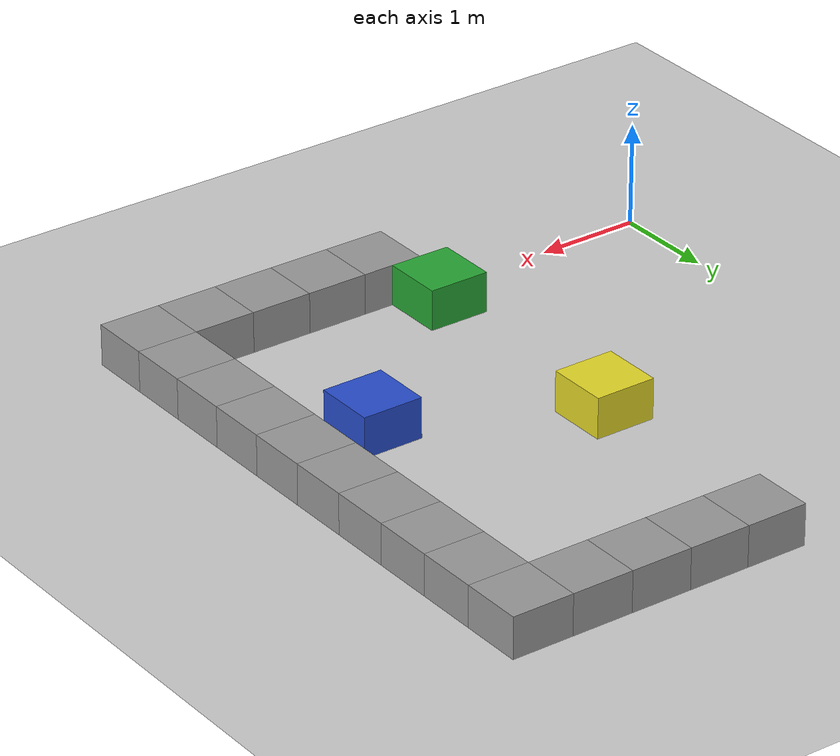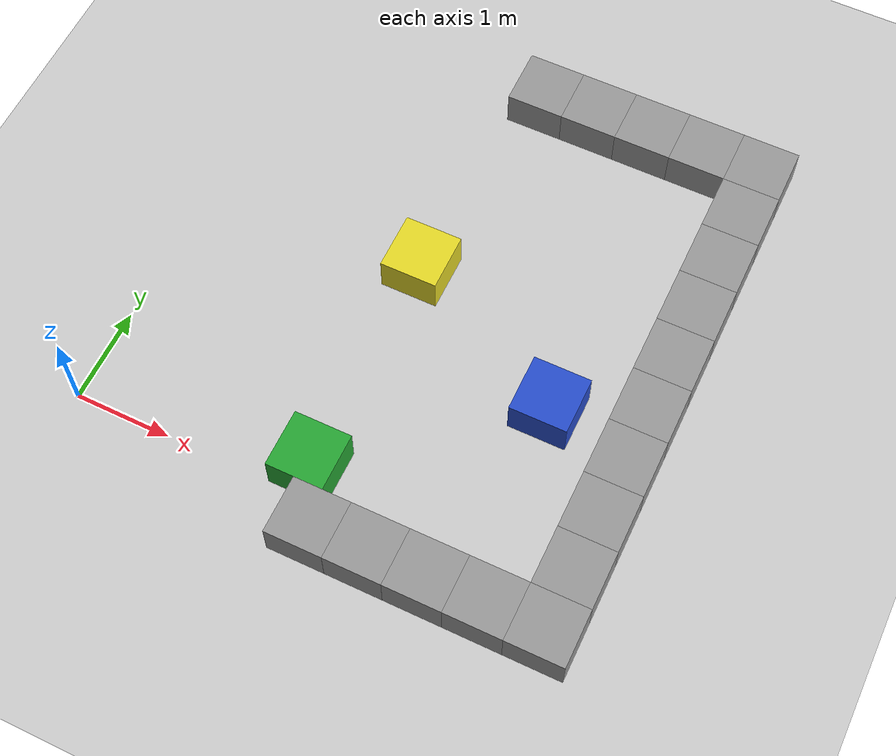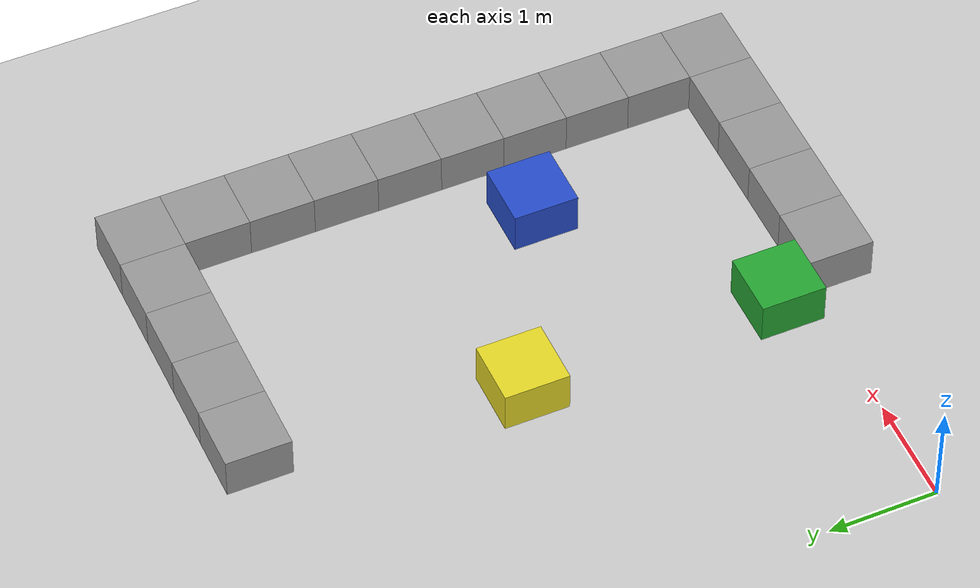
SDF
<sdf version="1.4">
 <world name="default">
  <include><uri>model://ground_plane</uri></include>
  <include><uri>model://sun</uri></include>
  <model name="57">
   <static>true</static>
   <pose>2.4 0.3 0.2 0 0 0</pose>
   <link name="link">
    <inertial><mass value="1"/><inertia ixx="1" ixy="1" ixz="1" iyy="1" iyz="1" izz="1"/></inertial>
    <collision name="collision"><geometry><box><size>0.6 0.6 0.4</size></box></geometry></collision>
    <visual name="visual">
     <geometry><box><size>0.6 0.6 0.4</size></box></geometry>
     <material>
      <script><name>Gazebo/Green</name><uri>file://media/materials/scripts/gazebo.material</uri></script>
     </material>
    </visual>
   </link>
  </model>
  <model name="59">
   <static>true</static>
   <pose>4.2 1.8 0.2 0 0 0</pose>
   <link name="link">
    <inertial><mass value="1"/><inertia ixx="1" ixy="1" ixz="1" iyy="1" iyz="1" izz="1"/></inertial>
    <collision name="collision"><geometry><box><size>0.6 0.6 0.4</size></box></geometry></collision>
    <visual name="visual">
     <geometry><box><size>0.6 0.6 0.4</size></box></geometry>
     <material>
      <script><name>Gazebo/Blue</name><uri>file://media/materials/scripts/gazebo.material</uri></script>
     </material>
    </visual>
   </link>
  </model>
  <model name="61">
   <static>true</static>
   <pose>2.4 2.6999999999999997 0.2 0 0 0</pose>
   <link name="link">
    <inertial><mass value="1"/><inertia ixx="1" ixy="1" ixz="1" iyy="1" iyz="1" izz="1"/></inertial>
    <collision name="collision"><geometry><box><size>0.6 0.6 0.4</size></box></geometry></collision>
    <visual name="visual">
     <geometry><box><size>0.6 0.6 0.4</size></box></geometry>
     <material>
      <script><name>Gazebo/Yellow</name><uri>file://media/materials/scripts/gazebo.material</uri></script>
     </material>
    </visual>
   </link>
  </model>
  <model name="1_1">
   <static>true</static>
   <pose>5.1 -0.3 0.2 0 0 0</pose>
   <link name="link">
    <inertial><mass value="1"/><inertia ixx="1" ixy="1" ixz="1" iyy="1" iyz="1" izz="1"/></inertial>
    <collision name="collision"><geometry><box><size>0.6 0.6 0.4</size></box></geometry></collision>
    <visual name="visual">
     <geometry><box><size>0.6 0.6 0.4</size></box></geometry>
     <material>
      <script><name>Gazebo/Grey</name><uri>file://media/materials/scripts/gazebo.material</uri></script>
     </material>
    </visual>
   </link>
  </model>
  <model name="1_5">
   <static>true</static>
   <pose>5.1 0.3 0.2 0 0 0</pose>
   <link name="link">
    <inertial><mass value="1"/><inertia ixx="1" ixy="1" ixz="1" iyy="1" iyz="1" izz="1"/></inertial>
    <collision name="collision"><geometry><box><size>0.6 0.6 0.4</size></box></geometry></collision>
    <visual name="visual">
     <geometry><box><size>0.6 0.6 0.4</size></box></geometry>
     <material>
      <script><name>Gazebo/Grey</name><uri>file://media/materials/scripts/gazebo.material</uri></script>
     </material>
    </visual>
   </link>
  </model>
  <model name="1_9">
   <static>true</static>
   <pose>5.1 0.8999999999999999 0.2 0 0 0</pose>
   <link name="link">
    <inertial><mass value="1"/><inertia ixx="1" ixy="1" ixz="1" iyy="1" iyz="1" izz="1"/></inertial>
    <collision name="collision"><geometry><box><size>0.6 0.6 0.4</size></box></geometry></collision>
    <visual name="visual">
     <geometry><box><size>0.6 0.6 0.4</size></box></geometry>
     <material>
      <script><name>Gazebo/Grey</name><uri>file://media/materials/scripts/gazebo.material</uri></script>
     </material>
    </visual>
   </link>
  </model>
  <model name="1_13">
   <static>true</static>
   <pose>5.1 1.5 0.2 0 0 0</pose>
   <link name="link">
    <inertial><mass value="1"/><inertia ixx="1" ixy="1" ixz="1" iyy="1" iyz="1" izz="1"/></inertial>
    <collision name="collision"><geometry><box><size>0.6 0.6 0.4</size></box></geometry></collision>
    <visual name="visual">
     <geometry><box><size>0.6 0.6 0.4</size></box></geometry>
     <material>
      <script><name>Gazebo/Grey</name><uri>file://media/materials/scripts/gazebo.material</uri></script>
     </material>
    </visual>
   </link>
  </model>
  <model name="1_17">
   <static>true</static>
   <pose>5.1 2.0999999999999996 0.2 0 0 0</pose>
   <link name="link">
    <inertial><mass value="1"/><inertia ixx="1" ixy="1" ixz="1" iyy="1" iyz="1" izz="1"/></inertial>
    <collision name="collision"><geometry><box><size>0.6 0.6 0.4</size></box></geometry></collision>
    <visual name="visual">
     <geometry><box><size>0.6 0.6 0.4</size></box></geometry>
     <material>
      <script><name>Gazebo/Grey</name><uri>file://media/materials/scripts/gazebo.material</uri></script>
     </material>
    </visual>
   </link>
  </model>
  <model name="1_21">
   <static>true</static>
   <pose>5.1 2.6999999999999997 0.2 0 0 0</pose>
   <link name="link">
    <inertial><mass value="1"/><inertia ixx="1" ixy="1" ixz="1" iyy="1" iyz="1" izz="1"/></inertial>
    <collision name="collision"><geometry><box><size>0.6 0.6 0.4</size></box></geometry></collision>
    <visual name="visual">
     <geometry><box><size>0.6 0.6 0.4</size></box></geometry>
     <material>
      <script><name>Gazebo/Grey</name><uri>file://media/materials/scripts/gazebo.material</uri></script>
     </material>
    </visual>
   </link>
  </model>
  <model name="0_22">
   <static>true</static>
   <pose>2.6999999999999997 -0.3 0.2 0 0 0</pose>
   <link name="link">
    <inertial><mass value="1"/><inertia ixx="1" ixy="1" ixz="1" iyy="1" iyz="1" izz="1"/></inertial>
    <collision name="collision"><geometry><box><size>0.6 0.6 0.4</size></box></geometry></collision>
    <visual name="visual">
     <geometry><box><size>0.6 0.6 0.4</size></box></geometry>
     <material>
      <script><name>Gazebo/Grey</name><uri>file://media/materials/scripts/gazebo.material</uri></script>
     </material>
    </visual>
   </link>
  </model>
  <model name="0_23">
   <static>true</static>
   <pose>2.6999999999999997 5.1 0.2 0 0 0</pose>
   <link name="link">
    <inertial><mass value="1"/><inertia ixx="1" ixy="1" ixz="1" iyy="1" iyz="1" izz="1"/></inertial>
    <collision name="collision"><geometry><box><size>0.6 0.6 0.4</size></box></geometry></collision>
    <visual name="visual">
     <geometry><box><size>0.6 0.6 0.4</size></box></geometry>
     <material>
      <script><name>Gazebo/Grey</name><uri>file://media/materials/scripts/gazebo.material</uri></script>
     </material>
    </visual>
   </link>
  </model>
  <model name="1_25">
   <static>true</static>
   <pose>5.1 3.3 0.2 0 0 0</pose>
   <link name="link">
    <inertial><mass value="1"/><inertia ixx="1" ixy="1" ixz="1" iyy="1" iyz="1" izz="1"/></inertial>
    <collision name="collision"><geometry><box><size>0.6 0.6 0.4</size></box></geometry></collision>
    <visual name="visual">
     <geometry><box><size>0.6 0.6 0.4</size></box></geometry>
     <material>
      <script><name>Gazebo/Grey</name><uri>file://media/materials/scripts/gazebo.material</uri></script>
     </material>
    </visual>
   </link>
  </model>
  <model name="0_26">
   <static>true</static>
   <pose>3.3 -0.3 0.2 0 0 0</pose>
   <link name="link">
    <inertial><mass value="1"/><inertia ixx="1" ixy="1" ixz="1" iyy="1" iyz="1" izz="1"/></inertial>
    <collision name="collision"><geometry><box><size>0.6 0.6 0.4</size></box></geometry></collision>
    <visual name="visual">
     <geometry><box><size>0.6 0.6 0.4</size></box></geometry>
     <material>
      <script><name>Gazebo/Grey</name><uri>file://media/materials/scripts/gazebo.material</uri></script>
     </material>
    </visual>
   </link>
  </model>
  <model name="0_27">
   <static>true</static>
   <pose>3.3 5.1 0.2 0 0 0</pose>
   <link name="link">
    <inertial><mass value="1"/><inertia ixx="1" ixy="1" ixz="1" iyy="1" iyz="1" izz="1"/></inertial>
    <collision name="collision"><geometry><box><size>0.6 0.6 0.4</size></box></geometry></collision>
    <visual name="visual">
     <geometry><box><size>0.6 0.6 0.4</size></box></geometry>
     <material>
      <script><name>Gazebo/Grey</name><uri>file://media/materials/scripts/gazebo.material</uri></script>
     </material>
    </visual>
   </link>
  </model>
  <model name="1_29">
   <static>true</static>
   <pose>5.1 3.8999999999999995 0.2 0 0 0</pose>
   <link name="link">
    <inertial><mass value="1"/><inertia ixx="1" ixy="1" ixz="1" iyy="1" iyz="1" izz="1"/></inertial>
    <collision name="collision"><geometry><box><size>0.6 0.6 0.4</size></box></geometry></collision>
    <visual name="visual">
     <geometry><box><size>0.6 0.6 0.4</size></box></geometry>
     <material>
      <script><name>Gazebo/Grey</name><uri>file://media/materials/scripts/gazebo.material</uri></script>
     </material>
    </visual>
   </link>
  </model>
  <model name="0_30">
   <static>true</static>
   <pose>3.8999999999999995 -0.3 0.2 0 0 0</pose>
   <link name="link">
    <inertial><mass value="1"/><inertia ixx="1" ixy="1" ixz="1" iyy="1" iyz="1" izz="1"/></inertial>
    <collision name="collision"><geometry><box><size>0.6 0.6 0.4</size></box></geometry></collision>
    <visual name="visual">
     <geometry><box><size>0.6 0.6 0.4</size></box></geometry>
     <material>
      <script><name>Gazebo/Grey</name><uri>file://media/materials/scripts/gazebo.material</uri></script>
     </material>
    </visual>
   </link>
  </model>
  <model name="0_31">
   <static>true</static>
   <pose>3.8999999999999995 5.1 0.2 0 0 0</pose>
   <link name="link">
    <inertial><mass value="1"/><inertia ixx="1" ixy="1" ixz="1" iyy="1" iyz="1" izz="1"/></inertial>
    <collision name="collision"><geometry><box><size>0.6 0.6 0.4</size></box></geometry></collision>
    <visual name="visual">
     <geometry><box><size>0.6 0.6 0.4</size></box></geometry>
     <material>
      <script><name>Gazebo/Grey</name><uri>file://media/materials/scripts/gazebo.material</uri></script>
     </material>
    </visual>
   </link>
  </model>
  <model name="1_33">
   <static>true</static>
   <pose>5.1 4.5 0.2 0 0 0</pose>
   <link name="link">
    <inertial><mass value="1"/><inertia ixx="1" ixy="1" ixz="1" iyy="1" iyz="1" izz="1"/></inertial>
    <collision name="collision"><geometry><box><size>0.6 0.6 0.4</size></box></geometry></collision>
    <visual name="visual">
     <geometry><box><size>0.6 0.6 0.4</size></box></geometry>
     <material>
      <script><name>Gazebo/Grey</name><uri>file://media/materials/scripts/gazebo.material</uri></script>
     </material>
    </visual>
   </link>
  </model>
  <model name="0_34">
   <static>true</static>
   <pose>4.5 -0.3 0.2 0 0 0</pose>
   <link name="link">
    <inertial><mass value="1"/><inertia ixx="1" ixy="1" ixz="1" iyy="1" iyz="1" izz="1"/></inertial>
    <collision name="collision"><geometry><box><size>0.6 0.6 0.4</size></box></geometry></collision>
    <visual name="visual">
     <geometry><box><size>0.6 0.6 0.4</size></box></geometry>
     <material>
      <script><name>Gazebo/Grey</name><uri>file://media/materials/scripts/gazebo.material</uri></script>
     </material>
    </visual>
   </link>
  </model>
  <model name="0_35">
   <static>true</static>
   <pose>4.5 5.1 0.2 0 0 0</pose>
   <link name="link">
    <inertial><mass value="1"/><inertia ixx="1" ixy="1" ixz="1" iyy="1" iyz="1" izz="1"/></inertial>
    <collision name="collision"><geometry><box><size>0.6 0.6 0.4</size></box></geometry></collision>
    <visual name="visual">
     <geometry><box><size>0.6 0.6 0.4</size></box></geometry>
     <material>
      <script><name>Gazebo/Grey</name><uri>file://media/materials/scripts/gazebo.material</uri></script>
     </material>
    </visual>
   </link>
  </model>
  <model name="1_37">
   <static>true</static>
   <pose>5.1 5.1 0.2 0 0 0</pose>
   <link name="link">
    <inertial><mass value="1"/><inertia ixx="1" ixy="1" ixz="1" iyy="1" iyz="1" izz="1"/></inertial>
    <collision name="collision"><geometry><box><size>0.6 0.6 0.4</size></box></geometry></collision>
    <visual name="visual">
     <geometry><box><size>0.6 0.6 0.4</size></box></geometry>
     <material>
      <script><name>Gazebo/Grey</name><uri>file://media/materials/scripts/gazebo.material</uri></script>
     </material>
    </visual>
   </link>
  </model>
  <model name="0_38">
   <static>true</static>
   <pose>5.1 -0.3 0.2 0 0 0</pose>
   <link name="link">
    <inertial><mass value="1"/><inertia ixx="1" ixy="1" ixz="1" iyy="1" iyz="1" izz="1"/></inertial>
    <collision name="collision"><geometry><box><size>0.6 0.6 0.4</size></box></geometry></collision>
    <visual name="visual">
     <geometry><box><size>0.6 0.6 0.4</size></box></geometry>
     <material>
      <script><name>Gazebo/Grey</name><uri>file://media/materials/scripts/gazebo.material</uri></script>
     </material>
    </visual>
   </link>
  </model>
  <model name="0_39">
   <static>true</static>
   <pose>5.1 5.1 0.2 0 0 0</pose>
   <link name="link">
    <inertial><mass value="1"/><inertia ixx="1" ixy="1" ixz="1" iyy="1" iyz="1" izz="1"/></inertial>
    <collision name="collision"><geometry><box><size>0.6 0.6 0.4</size></box></geometry></collision>
    <visual name="visual">
     <geometry><box><size>0.6 0.6 0.4</size></box></geometry>
     <material>
      <script><name>Gazebo/Grey</name><uri>file://media/materials/scripts/gazebo.material</uri></script>
     </material>
    </visual>
   </link>
  </model>
 </world>
</sdf>
